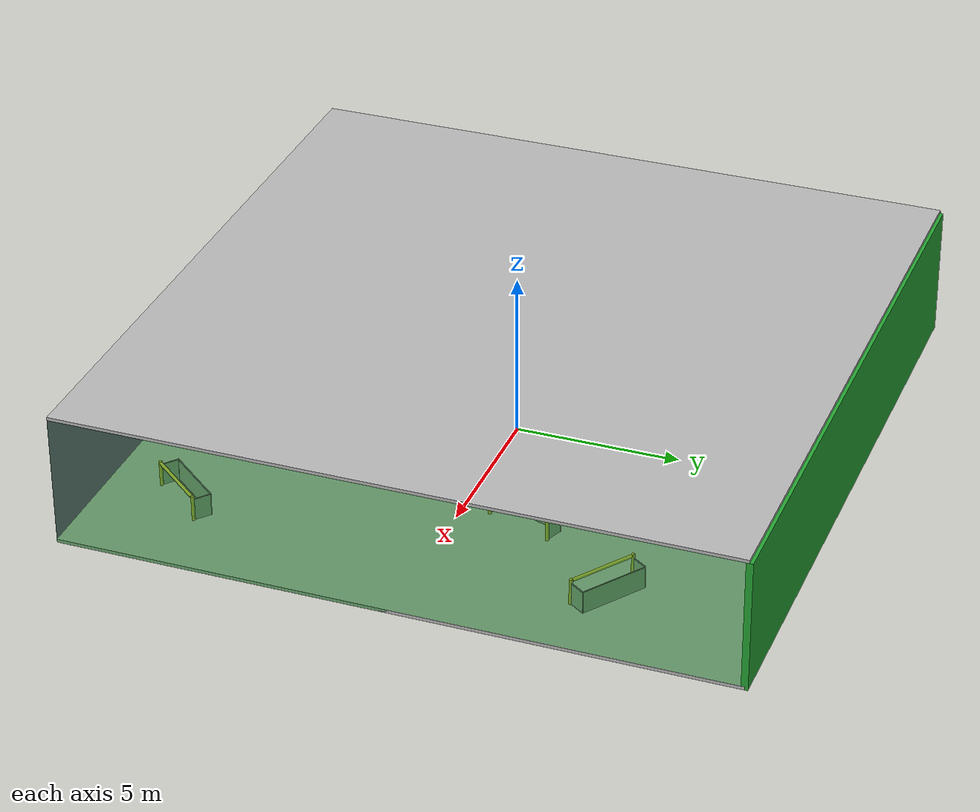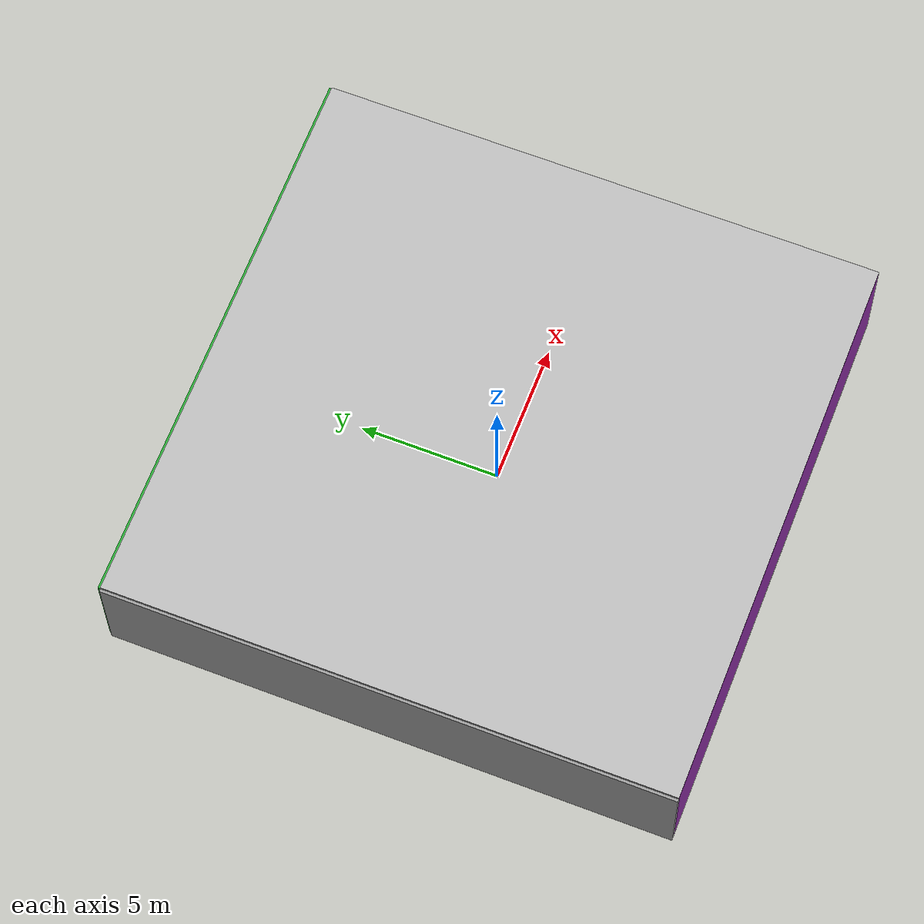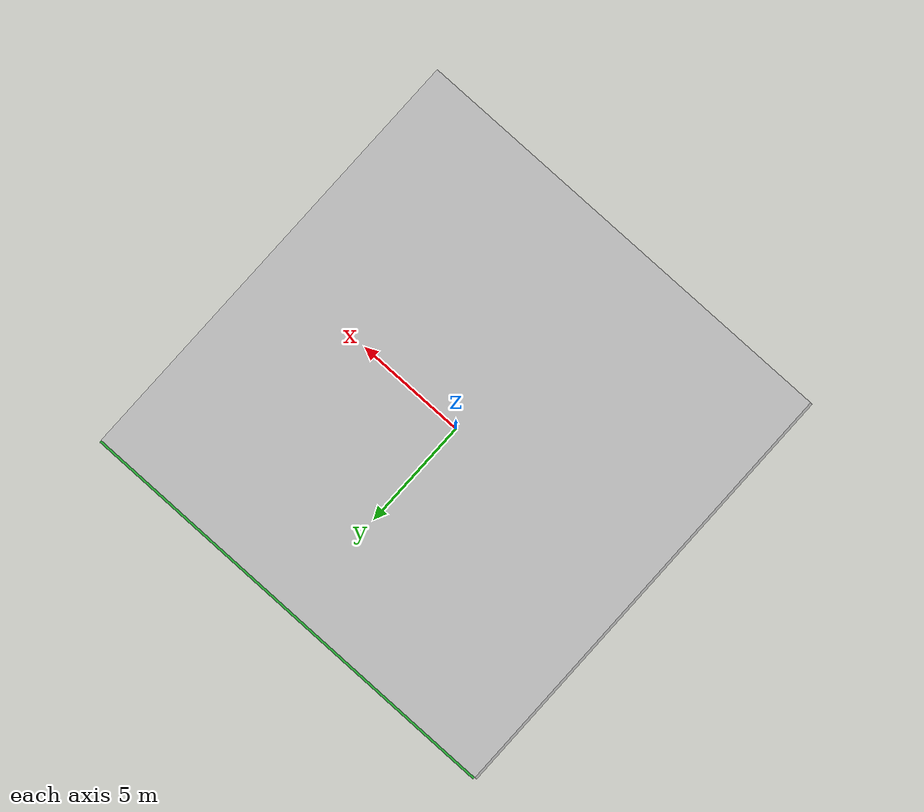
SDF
<sdf version="1.4">
 <world name="default">
  <physics type="ode">
   <max_step_size>0.001</max_step_size>
   <real_time_factor>1</real_time_factor>
   <real_time_update_rate>1000</real_time_update_rate>
   <gravity>0 0 -9.8</gravity>
  </physics>
  <scene><ambient>0.4 0.4 0.4 1</ambient><background>0.7 0.7 0.7 1</background><shadows>1</shadows></scene>
  <model name="Surrounding">
   <static>1</static>
   <link name="Ceiling">
    <collision name="Ceiling_Collision"><geometry><box><size>20 20 0.1</size></box></geometry></collision>
    <visual name="Ceiling_Visual">
     <geometry><box><size>20 20 0.1</size></box></geometry>
     <material>
      <script><uri>file://media/materials/scripts/gazebo.material</uri><name>Gazebo/PioneerBody</name></script>
     </material>
    </visual>
    <pose>0 0 4.05 0 0 0</pose>
   </link>
   <link name="Wall_South">
    <collision name="Wall_South_Collision">
     <geometry><box><size>20 0 4</size></box></geometry>
     <pose>0 0 2 0 -0 0</pose>
    </collision>
    <visual name="Wall_South_Visual">
     <pose>0 0 2 0 -0 0</pose>
     <geometry><box><size>20 0 4</size></box></geometry>
     <material>
      <script><uri>file://media/materials/scripts/gazebo.material</uri><name>Gazebo/Purple</name></script>
     </material>
    </visual>
    <velocity_decay><linear>0</linear><angular>0</angular></velocity_decay>
    <pose>0 -10 0 0 -0 0</pose>
   </link>
   <link name="Wall_East">
    <collision name="Wall_21_Collision">
     <geometry><box><size>20 0 4</size></box></geometry>
     <pose>0 0 2 0 -0 0</pose>
    </collision>
    <visual name="Wall_21_Visual">
     <pose>0 0 2 0 -0 0</pose>
     <geometry><box><size>20 0 4</size></box></geometry>
     <material>
      <script><uri>file://media/materials/scripts/gazebo.material</uri><name>Gazebo/GreenTransparent</name></script>
     </material>
    </visual>
    <velocity_decay><linear>0</linear><angular>0</angular></velocity_decay>
    <pose>10 0 0 0 -0 1.5708</pose>
   </link>
   <link name="Wall_North">
    <collision name="Wall_22_Collision">
     <geometry><box><size>20 0.2 4</size></box></geometry>
     <pose>0 0 2 0 -0 0</pose>
    </collision>
    <visual name="Wall_22_Visual">
     <pose>0 0 2 0 -0 0</pose>
     <geometry><box><size>20 0.2 4</size></box></geometry>
     <material>
      <script><uri>file://media/materials/scripts/gazebo.material</uri><name>Gazebo/GreenGlow</name></script>
     </material>
    </visual>
    <velocity_decay><linear>0</linear><angular>0</angular></velocity_decay>
    <pose>0 10 0 0 -0 0</pose>
   </link>
   <link name="Wall_West">
    <collision name="Wall_23_Collision">
     <geometry><box><size>20 0.2 4</size></box></geometry>
     <pose>0 0 2 0 -0 0</pose>
    </collision>
    <visual name="Wall_23_Visual">
     <pose>0 0 2 0 -0 0</pose>
     <geometry><box><size>20 0.2 4</size></box></geometry>
     <material>
      <script><uri>file://media/materials/scripts/gazebo.material</uri><name>Gazebo/GreyGradientSky</name></script>
     </material>
    </visual>
    <velocity_decay><linear>0</linear><angular>0</angular></velocity_decay>
    <pose>-10 0 0 0 0 -1.5708</pose>
   </link>
   <link name="Ground_link">
    <collision name="collision">
     <pose>0 0 .05 0 -0 0</pose>
     <geometry><box><size>20 20 0.1</size></box></geometry>
    </collision>
    <visual name="visual">
     <pose>0 0 .05 0 -0 0</pose>
     <geometry><box><size>20 20 0.1</size></box></geometry>
     <material>
      <script><uri>file://media/materials/scripts/gazebo.material</uri><name>Gazebo/PioneerBody</name></script>
     </material>
    </visual>
   </link>
   <static>1</static>
  </model>
  <spherical_coordinates>
   <surface_model>EARTH_WGS84</surface_model>
   <latitude_deg>0</latitude_deg>
   <longitude_deg>0</longitude_deg>
   <elevation>0</elevation>
   <heading_deg>0</heading_deg>
  </spherical_coordinates>
  <light name="lightball_0" type="diffuse">
   <diffuse>0.8 0.8 0.8 1</diffuse>
   <specular>0.2 0.2 0.2 1</specular>
   <attenuation>
    <range>100</range>
    <constant>0.7</constant>
    <linear>0.01</linear>
    <quadratic>0.001</quadratic>
   </attenuation>
   <direction>-0.5 0.1 -0.9</direction>
   <pose>8.00328323383 6.90132405592 3.82353059731 0 0 0</pose>
  </light>
  <light name="lightball_1" type="diffuse">
   <diffuse>0.8 0.8 0.8 1</diffuse>
   <specular>0.2 0.2 0.2 1</specular>
   <attenuation>
    <range>100</range>
    <constant>0.7</constant>
    <linear>0.01</linear>
    <quadratic>0.001</quadratic>
   </attenuation>
   <direction>-0.5 0.1 -0.9</direction>
   <pose>-7.42081014447 -0.672341665193 2.29817347022 0 0 0</pose>
  </light>
  <light name="lightball_2" type="diffuse">
   <diffuse>0.8 0.8 0.8 1</diffuse>
   <specular>0.2 0.2 0.2 1</specular>
   <attenuation>
    <range>100</range>
    <constant>0.7</constant>
    <linear>0.01</linear>
    <quadratic>0.001</quadratic>
   </attenuation>
   <direction>-0.5 0.1 -0.9</direction>
   <pose>4.17152932133 -2.14581182456 1.53051693715 0 0 0</pose>
  </light>
  <light name="lightball_3" type="diffuse">
   <diffuse>0.8 0.8 0.8 1</diffuse>
   <specular>0.2 0.2 0.2 1</specular>
   <attenuation>
    <range>100</range>
    <constant>0.7</constant>
    <linear>0.01</linear>
    <quadratic>0.001</quadratic>
   </attenuation>
   <direction>-0.5 0.1 -0.9</direction>
   <pose>8.22512992731 -5.87049210478 0.835146507469 0 0 0</pose>
  </light>
  <light name="lightball_4" type="diffuse">
   <diffuse>0.8 0.8 0.8 1</diffuse>
   <specular>0.2 0.2 0.2 1</specular>
   <attenuation>
    <range>100</range>
    <constant>0.7</constant>
    <linear>0.01</linear>
    <quadratic>0.001</quadratic>
   </attenuation>
   <direction>-0.5 0.1 -0.9</direction>
   <pose>-7.02897520191 0.878621230524 1.06871091981 0 0 0</pose>
  </light>
  <include><uri>model://cabinet</uri><pose>-6.71703045863 7.76648829006 0 0 0 1.46769564301</pose></include>
  <include>
   <uri>model://construction_cone</uri>
   <pose>-2.27607420385 -6.84987517096 0 0 0 0.34178759634</pose>
  </include>
  <include>
   <uri>model://construction_cone</uri>
   <pose>0.942847804869 4.54709600257 0 0 0 0.838790015971</pose>
  </include>
  <include><uri>model://cabinet</uri><pose>1.23370985931 7.72748476302 0 0 0 1.91174398502</pose></include>
  <include>
   <uri>model://robocup_3Dsim_goal</uri>
   <pose>4.9793063199 1.86886649614 0 0 0 2.79430696713</pose>
  </include>
  <include>
   <uri>model://robocup_3Dsim_goal</uri>
   <pose>7.14078377661 -7.63729655399 0 0 0 2.45280387016</pose>
  </include>
  <include>
   <uri>model://robocup_3Dsim_goal</uri>
   <pose>7.13985249075 5.07977386506 0 0 0 0.96193982457</pose>
  </include>
 </world>
</sdf>

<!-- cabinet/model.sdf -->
<sdf version="1.5">
  <model name="cabinet">
    <static>true</static>
    <link name="cabinet_bottom_plate">
      <inertial>
        <pose>0 0 -1 0 0 0</pose>
        <inertia>
          <ixx>2.050000</ixx>
          <ixy>0</ixy>
          <ixz>0</ixz>
          <iyy>2.050000</iyy>
          <iyz>0</iyz>
          <izz>2.050000</izz>
        </inertia>
        <mass>25.000000</mass>
      </inertial>
      <collision name="cabinet_bottom_plate_geom">
        <pose>0 0 0.010000 0 0 0</pose>
        <geometry>
          <box>
            <size>0.450000 0.450000 0.020000</size>
          </box>
        </geometry>
      </collision>
      <visual name="cabinet_bottom_plate_geom_visual">
        <pose>0 0 0.010000 0 0 0</pose>
        <geometry>
          <box>
            <size>0.450000 0.450000 0.020000</size>
          </box>
        </geometry>
        <material>
          <script>
            <uri>model://media/materials/scripts/gazebo.material</uri>
            <name>Gazebo/Wood</name>
          </script>
        </material>
      </visual>
      <collision name="cabinet_bottom_plate_geom_cabinet_back_plate">
        <pose>0.235000 0 0.510000 0 0 0</pose>
        <geometry>
          <box>
            <size>0.020000 0.450000 1.020000</size>
          </box>
        </geometry>
      </collision>
      <visual name="cabinet_bottom_plate_geom_cabinet_back_plate_visual">
        <pose>0.235000 0 0.510000 0 0 0</pose>
        <geometry>
          <box>
            <size>0.020000 0.450000 1.020000</size>
          </box>
        </geometry>
        <material>
          <script>
            <uri>model://media/materials/scripts/gazebo.material</uri>
            <name>Gazebo/Wood</name>
          </script>
        </material>
      </visual>
      <collision name="cabinet_bottom_plate_geom_cabinet_left_plate">
        <pose>0 0.235000 0.510000 0 0 0</pose>
        <geometry>
          <box>
            <size>0.450000 0.020000 1.020000</size>
          </box>
        </geometry>
      </collision>
      <visual name="cabinet_bottom_plate_geom_cabinet_left_plate_visual">
        <pose>0 0.235000 0.510000 0 0 0</pose>
        <geometry>
          <box>
            <size>0.450000 0.020000 1.020000</size>
          </box>
        </geometry>
        <material>
          <script>
            <uri>model://media/materials/scripts/gazebo.material</uri>
            <name>Gazebo/Wood</name>
          </script>
        </material>
      </visual>
      <collision name="cabinet_bottom_plate_geom_cabinet_middle_plate">
        <pose>0 0 0.510000 0 0 0</pose>
        <geometry>
          <box>
            <size>0.450000 0.450000 0.020000</size>
          </box>
        </geometry>
      </collision>
      <visual name="cabinet_bottom_plate_geom_cabinet_middle_plate_visual">
        <pose>0 0 0.510000 0 0 0</pose>
        <geometry>
          <box>
            <size>0.450000 0.450000 0.020000</size>
          </box>
        </geometry>
        <material>
          <script>
            <uri>model://media/materials/scripts/gazebo.material</uri>
            <name>Gazebo/Wood</name>
          </script>
        </material>
      </visual>
      <collision name="cabinet_bottom_plate_geom_cabinet_right_plate">
        <pose>0 -0.235000 0.510000 0 0 0</pose>
        <geometry>
          <box>
            <size>0.450000 0.020000 1.020000</size>
          </box>
        </geometry>
      </collision>
      <visual name="cabinet_bottom_plate_geom_cabinet_right_plate_visual">
        <pose>0 -0.235000 0.510000 0 0 0</pose>
        <geometry>
          <box>
            <size>0.450000 0.020000 1.020000</size>
          </box>
        </geometry>
        <material>
          <script>
            <uri>model://media/materials/scripts/gazebo.material</uri>
            <name>Gazebo/Wood</name>
          </script>
        </material>
      </visual>
      <collision name="cabinet_bottom_plate_geom_cabinet_top_plate">
        <pose>0 0 1.010000 0 0 0</pose>
        <geometry>
          <box>
            <size>0.450000 0.450000 0.020000</size>
          </box>
        </geometry>
      </collision>
      <visual name="cabinet_bottom_plate_geom_cabinet_top_plate_visual">
        <pose>0 0 1.010000 0 0 0</pose>
        <geometry>
          <box>
            <size>0.450000 0.450000 0.020000</size>
          </box>
        </geometry>
        <material>
          <script>
            <uri>model://media/materials/scripts/gazebo.material</uri>
            <name>Gazebo/Wood</name>
          </script>
        </material>
      </visual>
    </link>
  </model>
</sdf>

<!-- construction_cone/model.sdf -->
<sdf version="1.5">
  <model name="Construction Cone">
    <link name="link">
      <collision name="collision">
        <geometry>
          <mesh>
            <scale>10 10 10</scale>
            <uri>file://isr-testbed/construction_cone/meshes/construction_cone.dae</uri>
          </mesh>
        </geometry>
      </collision>
      <visual name="visual">
        <geometry>
          <mesh>
            <scale>10 10 10</scale>
            <uri>file://isr-testbed/construction_cone/meshes/construction_cone.dae</uri>
          </mesh>
        </geometry>
      </visual>
    </link>
  </model>
</sdf>

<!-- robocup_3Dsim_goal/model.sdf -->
<sdf version="1.5">
  <model name="robocup_3d_goal">
    <static>true</static>
    <link name="left_post">
      <pose>0 1.05 0.45 0 0 0</pose>
      <collision name="collision">
        <geometry>
          <cylinder>
            <radius>0.05</radius>
            <length>0.9</length>
          </cylinder>
        </geometry>
      </collision>
      <visual name="visual">
        <geometry>
          <cylinder>
            <radius>0.05</radius>
            <length>0.9</length>
          </cylinder>
        </geometry>
        <material>
          <script>
            <uri>file://media/materials/scripts/gazebo.material</uri>
            <name>Gazebo/ZincYellow</name>
          </script>
        </material>
      </visual>
    </link>
    <link name="left_support_horiz_lower">
      <pose>0.30 1.05 0.01 0 0 0</pose>
      <collision name="collision">
        <geometry>
          <box>
            <size>0.50 0.02 0.02</size>
          </box>
        </geometry>
      </collision>
      <visual name="visual">
        <geometry>
          <box>
            <size>0.50 0.02 0.02</size>
          </box>
        </geometry>
        <material>
          <script>
            <uri>file://media/materials/scripts/gazebo.material</uri>
            <name>Gazebo/White</name>
          </script>
        </material>
      </visual>
    </link>
    <link name="left_support_horiz_upper">
      <pose>0.30 1.05 0.79 0 0 0</pose>
      <collision name="collision">
        <geometry>
          <box>
            <size>0.50 0.02 0.02</size>
          </box>
        </geometry>
      </collision>
      <visual name="visual">
        <geometry>
          <box>
            <size>0.50 0.02 0.02</size>
          </box>
        </geometry>
        <material>
          <script>
            <uri>file://media/materials/scripts/gazebo.material</uri>
            <name>Gazebo/White</name>
          </script>
        </material>
      </visual>
    </link>
    <link name="left_support_vertical">
      <pose>0.56 1.05 0.4 0 1.5708 0</pose>
      <collision name="collision">
        <geometry>
          <box>
            <size>0.80 0.02 0.02</size>
          </box>
        </geometry>
      </collision>
      <visual name="visual">
        <geometry>
          <box>
            <size>0.80 0.02 0.02</size>
          </box>
        </geometry>
        <material>
          <script>
            <uri>file://media/materials/scripts/gazebo.material</uri>
            <name>Gazebo/White</name>
          </script>
        </material>
      </visual>
    </link>
    <link name="right_support_horiz_lower">
      <pose>0.30 -1.05 0.01 0 0 0</pose>
      <collision name="collision">
        <geometry>
          <box>
            <size>0.50 0.02 0.02</size>
          </box>
        </geometry>
      </collision>
      <visual name="visual">
        <geometry>
          <box>
            <size>0.50 0.02 0.02</size>
          </box>
        </geometry>
        <material>
          <script>
            <uri>file://media/materials/scripts/gazebo.material</uri>
            <name>Gazebo/White</name>
          </script>
        </material>
      </visual>
    </link>
    <link name="right_support_horiz_upper">
      <pose>0.30 -1.05 0.79 0 0 0</pose>
      <collision name="collision">
        <geometry>
          <box>
            <size>0.50 0.02 0.02</size>
          </box>
        </geometry>
      </collision>
      <visual name="visual">
        <geometry>
          <box>
            <size>0.50 0.02 0.02</size>
          </box>
        </geometry>
        <material>
          <script>
            <uri>file://media/materials/scripts/gazebo.material</uri>
            <name>Gazebo/White</name>
          </script>
        </material>
      </visual>
    </link>
    <link name="right_support_vertical">
      <pose>0.56 -1.05 0.4 0 1.5708 0</pose>
      <collision name="collision">
        <geometry>
          <box>
            <size>0.80 0.02 0.02</size>
          </box>
        </geometry>
      </collision>
      <visual name="visual">
        <geometry>
          <box>
            <size>0.80 0.02 0.02</size>
          </box>
        </geometry>
        <material>
          <script>
            <uri>file://media/materials/scripts/gazebo.material</uri>
            <name>Gazebo/White</name>
          </script>
        </material>
      </visual>
    </link>
    <link name="center_support_horiz_lower">
      <pose>0.56 0 0.01 0 1.5708 0</pose>
      <collision name="collision">
        <geometry>
          <box>
            <size>0.02 2.08 0.02</size>
          </box>
        </geometry>
      </collision>
      <visual name="visual">
        <geometry>
          <box>
            <size>0.02 2.08 0.02</size>
          </box>
        </geometry>
        <material>
          <script>
            <uri>file://media/materials/scripts/gazebo.material</uri>
            <name>Gazebo/White</name>
          </script>
        </material>
      </visual>
    </link>
    <link name="center_support_horiz_upper">
      <pose>0.56 0 0.79 0 1.5708 0</pose>
      <collision name="collision">
        <geometry>
          <box>
            <size>0.02 2.08 0.02</size>
          </box>
        </geometry>
      </collision>
      <visual name="visual">
        <geometry>
          <box>
            <size>0.02 2.08 0.02</size>
          </box>
        </geometry>
        <material>
          <script>
            <uri>file://media/materials/scripts/gazebo.material</uri>
            <name>Gazebo/White</name>
          </script>
        </material>
      </visual>
    </link>
    <link name="right_post">
      <pose>0 -1.05 0.45 0 0 0</pose>
      <collision name="collision">
        <geometry>
          <cylinder>
            <radius>0.05</radius>
            <length>0.9</length>
          </cylinder>
        </geometry>
      </collision>
      <visual name="visual">
        <geometry>
          <cylinder>
            <radius>0.05</radius>
            <length>0.9</length>
          </cylinder>
        </geometry>
        <material>
          <script>
            <uri>file://media/materials/scripts/gazebo.material</uri>
            <name>Gazebo/ZincYellow</name>
          </script>
        </material>
      </visual>
    </link>
    <link name="crossbar">
      <pose>0 0 0.85 1.57 1.57 0</pose>
      <collision name="collision">
        <geometry>
          <cylinder>
            <radius>0.05</radius>
            <length>2.0</length>
          </cylinder>
        </geometry>
      </collision>
      <visual name="visual">
        <geometry>
          <cylinder>
            <radius>0.05</radius>
            <length>2.0</length>
          </cylinder>
        </geometry>
        <material>
          <script>
            <uri>file://media/materials/scripts/gazebo.material</uri>
            <name>Gazebo/ZincYellow</name>
          </script>
        </material>
      </visual>
    </link>
    <link name="center_net">
      <pose>0.56 0 0.40 0 0 0</pose>
      <collision name="collision">
        <geometry>
          <box>
            <size>0.01 2.1 0.80</size>
          </box>
        </geometry>
      </collision>
      <visual name="visual">
        <geometry>
          <box>
            <size>0.01 2.1 0.80</size>
          </box>
        </geometry>
        <material>
          <script>
            <uri>model://../model_source/models/robocup09_spl_field/materials/scripts/</uri>
            <uri>model://../model_source/models/robocup09_spl_field/materials/textures/</uri>
            <name>RoboCup/Net</name>
          </script>
        </material>
      </visual>
    </link>
    <link name="left_net">
      <pose>0.30 1.05 0.40 0 0 0</pose>
      <collision name="collision">
        <geometry>
          <box>
            <size>0.50 0.01 0.76</size>
          </box>
        </geometry>
      </collision>
      <visual name="visual">
        <geometry>
          <box>
            <size>0.50 0.01 0.76</size>
          </box>
        </geometry>
        <material>
          <script>
            <uri>model://../model_source/models/robocup09_spl_field/materials/scripts/</uri>
            <uri>model://../model_source/models/robocup09_spl_field/materials/textures/</uri>
            <name>RoboCup/Net</name>
          </script>
        </material>
      </visual>
    </link>
    <link name="right_net">
      <pose>0.30 -1.05 0.40 0 0 0</pose>
      <collision name="collision">
        <geometry>
          <box>
            <size>0.50 0.01 0.76</size>
          </box>
        </geometry>
      </collision>
      <visual name="visual">
        <geometry>
          <box>
            <size>0.50 0.01 0.76</size>
          </box>
        </geometry>
        <material>
          <script>
            <uri>model://../model_source/models/robocup09_spl_field/materials/scripts/</uri>
            <uri>model://../model_source/models/robocup09_spl_field/materials/textures/</uri>
            <name>RoboCup/Net</name>
          </script>
        </material>
      </visual>
    </link>
  </model>
</sdf>
